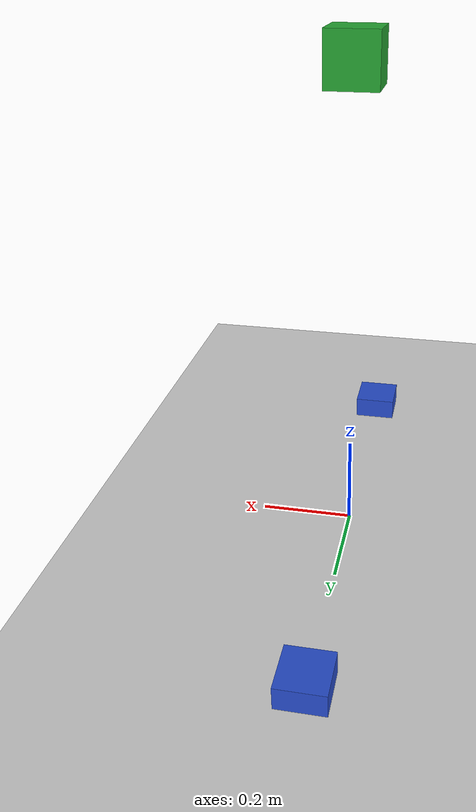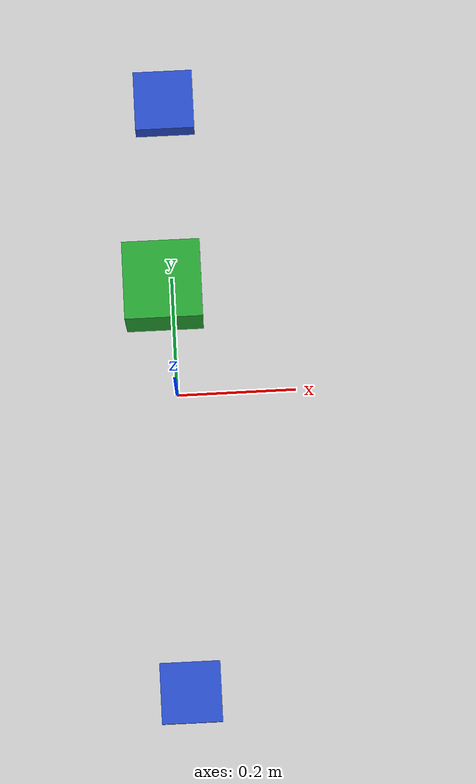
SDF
<?xml version="1.0" ?>
<sdf version="1.4">
  <world name="default">
    <physics type="ode">
      <gravity>0 0 -9.8</gravity>
      <max_step_size>0.001</max_step_size>
      <ode>
        <solver>
          <type>world</type>
          <min_step_size>0.001</min_step_size>
          <iters>40</iters>
          <sor>1.0</sor>
        </solver>
        <constraints>
          <cfm>0.0</cfm>
          <erp>0.2</erp>
          <contact_max_correcting_vel>100.0</contact_max_correcting_vel>
          <contact_surface_layer>0.0</contact_surface_layer>
        </constraints>
      </ode>
    </physics>
    <!-- A global light source -->
    <include>
      <uri>model://sun</uri>
    </include>
    <include>
      <uri>model://ground_plane</uri>
    </include>
    <include>
      <uri>file://models/robot</uri>
      <pose>0 0 0 0 0 0</pose>
    </include>
    <include>
      <uri>file://models/block</uri>
      <pose>0 0 1.0 0 0 0</pose>
    </include>
  </world>
</sdf>

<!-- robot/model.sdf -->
<sdf version="1.4">
  <model name="robot">
    <link name="gripper_l">
      <pose>0 -0.5 0 0 0 0</pose>
      <gravity>0</gravity>
      <inertial>
        <pose>0 0 0 0 0 0</pose>
        <inertia>
          <ixx>0.0016667</ixx>
          <ixy>0</ixy>
          <ixz>0</ixz>
          <iyy>0.0016667</iyy>
          <iyz>0</iyz>
          <izz>0.0016667</izz>
        </inertia>
        <mass>1.0</mass>
      </inertial>
      <collision name="gripper_l_col">
        <pose>0 0 0 0 0 0</pose>
        <geometry>
          <box>
            <size>0.1 0.1 0.1</size>
          </box>
        </geometry>
      </collision>
      <visual name="gripper_l_vis">
        <pose>0 0 0 0 0 0</pose>
        <geometry>
          <box>
            <size>0.1 0.1 0.1</size>
          </box>
        </geometry>
        <material>
          <script>
            <uri>file://media/materials/scripts/gazebo.material</uri>
            <name>Gazebo/Blue</name>
          </script>
        </material>
      </visual>
    </link>
    <link name="gripper_r">
      <pose>0 0.5 0 0 0 0</pose>
      <gravity>0</gravity>
      <inertial>
        <pose>0 0 0 0 0 0</pose>
        <inertia>
          <ixx>0.0016667</ixx>
          <ixy>0</ixy>
          <ixz>0</ixz>
          <iyy>0.0016667</iyy>
          <iyz>0</iyz>
          <izz>0.0016667</izz>
        </inertia>
        <mass>1.0</mass>
      </inertial>
      <collision name="gripper_r_col">
        <pose>0 0 0 0 0 0</pose>
        <geometry>
          <box>
            <size>0.1 0.1 0.1</size>
          </box>
        </geometry>
      </collision>
      <visual name="gripper_r_vis">
        <pose>0 0 0 0 0 0</pose>
        <geometry>
          <box>
            <size>0.1 0.1 0.1</size>
          </box>
        </geometry>
        <material>
          <script>
            <uri>file://media/materials/scripts/gazebo.material</uri>
            <name>Gazebo/Blue</name>
          </script>
        </material>
      </visual>
    </link>

    <joint name="actuator" type="prismatic">
      <parent>gripper_l</parent>
      <child>gripper_r</child>
      <axis>
        <dynamics>
          <damping>0.0</damping>
          <friction>0.0</friction>
        </dynamics>
        <xyz>0 1 0</xyz>
      </axis>
    </joint>

    <plugin name='block-grasp-controller' filename='libblock-grasp-controller.so'>
    </plugin>

  </model>
</sdf>

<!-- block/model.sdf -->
<sdf version="1.4">
  <!-- Just a simple cube -->
  <model name="block">
    <link name="body">
      <pose>0 0 0 0 0 0</pose>

      <!-- Inertial Properties -->
      <inertial>
        <pose>0 0 0 0 0 0</pose>
        <inertia>
          <ixx>0.0016667</ixx>
          <ixy>0</ixy>
          <ixz>0</ixz>
          <iyy>0.0016667</iyy>
          <iyz>0</iyz>
          <izz>0.0016667</izz>
        </inertia>
        <mass>1.0</mass>
      </inertial>

      <!-- Collision Mesh -->
      <collision name="body_col">
        <pose>0 0 0 0 0 0</pose>
        <geometry>
          <box>
            <size>0.1 0.1 0.1</size>
          </box>
        </geometry>
        <surface>
          <friction>
            <ode>
              <mu>10.0</mu>
              <mu2>10.0</mu2>
              <fdir1>0 0 0</fdir1>
              <slip1>0.0</slip1>
              <slip2>0.0</slip2>
            </ode>
          </friction>
        </surface>
      </collision>

      <!-- Visible Mesh -->
      <visual name="body_vis">
        <pose>0 0 0 0 0 0</pose>
        <geometry>
          <box>
            <size>0.1 0.1 0.1</size>
          </box>
        </geometry>
        <material>
          <script>
            <uri>file://media/materials/scripts/gazebo.material</uri>
            <name>Gazebo/Green</name>
          </script>
        </material>
      </visual>

    </link>

    <!-- If some controller necessary for the prop, define here. -->
  </model>
</sdf>
